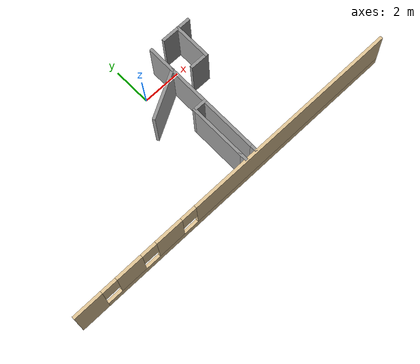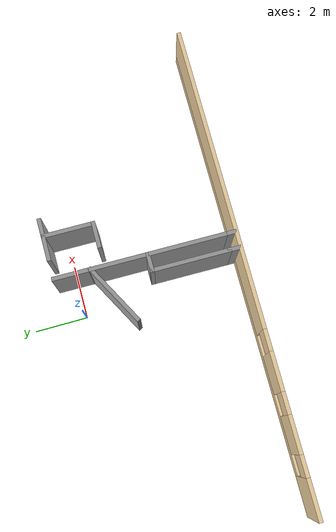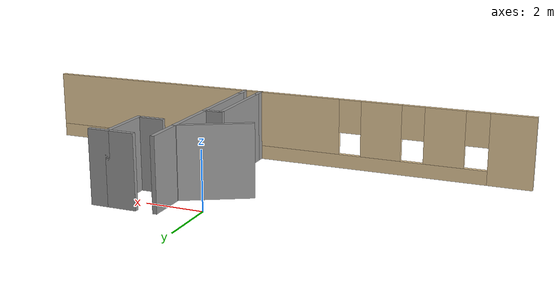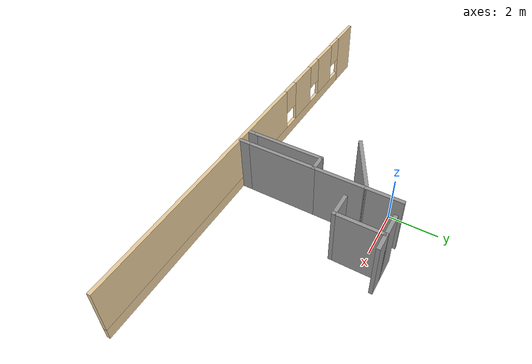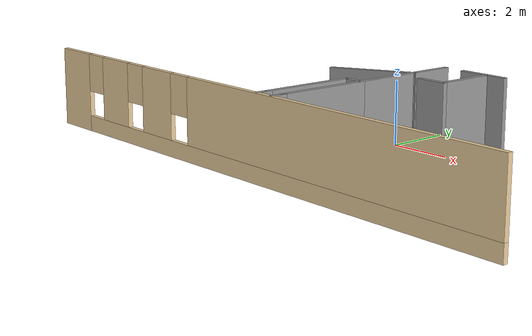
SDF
<sdf version="1.6">
 <model name="melgar_house">
  <link name="Wall_105">
   <pose>0.674077 -4.18057 0 0 0 -1.5708</pose>
   <visual name="Wall_105_Visual">
    <pose>0 0 1.25 0 -0 0</pose>
    <geometry><box><size>3 0.15 2.5</size></box></geometry>
    <material>
     <script><uri>file://media/materials/scripts/gazebo.material</uri><name>Gazebo/Grey</name></script>
     <ambient>1 1 1 1</ambient>
     <shader type="pixel"/>
     <diffuse>0.7 0.7 0.7 1</diffuse>
     <specular>0.01 0.01 0.01 1</specular>
     <emissive>0 0 0 1</emissive>
    </material>
    <meta><layer>0</layer></meta>
   </visual>
   <collision name="Wall_105_Collision">
    <pose>0 0 1.25 0 -0 0</pose>
    <geometry><box><size>3 0.15 2.5</size></box></geometry>
    <surface>
     <friction>
      <ode><mu>1</mu><mu2>1</mu2><fdir1>0 0 0</fdir1><slip1>0</slip1><slip2>0</slip2></ode>
      <torsional>
       <coefficient>1</coefficient>
       <patch_radius>0</patch_radius>
       <surface_radius>0</surface_radius>
       <use_patch_radius>1</use_patch_radius>
       <ode><slip>0</slip></ode>
      </torsional>
     </friction>
     <bounce><restitution_coefficient>0</restitution_coefficient><threshold>1e+06</threshold></bounce>
     <contact>
      <collide_without_contact>0</collide_without_contact>
      <collide_without_contact_bitmask>1</collide_without_contact_bitmask>
      <collide_bitmask>1</collide_bitmask>
      <ode>
       <soft_cfm>0</soft_cfm>
       <soft_erp>0.2</soft_erp>
       <kp>1e+13</kp>
       <kd>1</kd>
       <max_vel>0.01</max_vel>
       <min_depth>0</min_depth>
      </ode>
      <bullet>
       <split_impulse>1</split_impulse>
       <split_impulse_penetration_threshold>-0.01</split_impulse_penetration_threshold>
       <soft_cfm>0</soft_cfm>
       <soft_erp>0.2</soft_erp>
       <kp>1e+13</kp>
       <kd>1</kd>
      </bullet>
     </contact>
    </surface>
   </collision>
  </link>
  <link name="Wall_106">
   <pose>0.674077 -5.78057 0 0 0 -1.5708</pose>
   <visual name="Wall_106_Visual">
    <pose>0 0 1.25 0 -0 0</pose>
    <geometry><box><size>0.5 0.15 2.5</size></box></geometry>
    <material>
     <script><uri>file://media/materials/scripts/gazebo.material</uri><name>Gazebo/Grey</name></script>
     <ambient>1 1 1 1</ambient>
     <shader type="pixel"/>
     <diffuse>0.7 0.7 0.7 1</diffuse>
     <specular>0.01 0.01 0.01 1</specular>
     <emissive>0 0 0 1</emissive>
    </material>
    <meta><layer>0</layer></meta>
   </visual>
   <collision name="Wall_106_Collision">
    <pose>0 0 1.25 0 -0 0</pose>
    <geometry><box><size>0.5 0.15 2.5</size></box></geometry>
    <surface>
     <friction>
      <ode><mu>1</mu><mu2>1</mu2><fdir1>0 0 0</fdir1><slip1>0</slip1><slip2>0</slip2></ode>
      <torsional>
       <coefficient>1</coefficient>
       <patch_radius>0</patch_radius>
       <surface_radius>0</surface_radius>
       <use_patch_radius>1</use_patch_radius>
       <ode><slip>0</slip></ode>
      </torsional>
     </friction>
     <bounce><restitution_coefficient>0</restitution_coefficient><threshold>1e+06</threshold></bounce>
     <contact>
      <collide_without_contact>0</collide_without_contact>
      <collide_without_contact_bitmask>1</collide_without_contact_bitmask>
      <collide_bitmask>1</collide_bitmask>
      <ode>
       <soft_cfm>0</soft_cfm>
       <soft_erp>0.2</soft_erp>
       <kp>1e+13</kp>
       <kd>1</kd>
       <max_vel>0.01</max_vel>
       <min_depth>0</min_depth>
      </ode>
      <bullet>
       <split_impulse>1</split_impulse>
       <split_impulse_penetration_threshold>-0.01</split_impulse_penetration_threshold>
       <soft_cfm>0</soft_cfm>
       <soft_erp>0.2</soft_erp>
       <kp>1e+13</kp>
       <kd>1</kd>
      </bullet>
     </contact>
    </surface>
   </collision>
  </link>
  <link name="Wall_108">
   <pose>0.974077 -2.75557 0 0 -0 0</pose>
   <visual name="Wall_108_Visual">
    <pose>0 0 1.25 0 -0 0</pose>
    <geometry><box><size>0.75 0.15 2.5</size></box></geometry>
    <material>
     <script><uri>file://media/materials/scripts/gazebo.material</uri><name>Gazebo/Grey</name></script>
     <ambient>1 1 1 1</ambient>
     <shader type="pixel"/>
     <diffuse>0.7 0.7 0.7 1</diffuse>
     <specular>0.01 0.01 0.01 1</specular>
     <emissive>0 0 0 1</emissive>
    </material>
    <meta><layer>0</layer></meta>
   </visual>
   <collision name="Wall_108_Collision">
    <pose>0 0 1.25 0 -0 0</pose>
    <geometry><box><size>0.75 0.15 2.5</size></box></geometry>
    <surface>
     <friction>
      <ode><mu>1</mu><mu2>1</mu2><fdir1>0 0 0</fdir1><slip1>0</slip1><slip2>0</slip2></ode>
      <torsional>
       <coefficient>1</coefficient>
       <patch_radius>0</patch_radius>
       <surface_radius>0</surface_radius>
       <use_patch_radius>1</use_patch_radius>
       <ode><slip>0</slip></ode>
      </torsional>
     </friction>
     <bounce><restitution_coefficient>0</restitution_coefficient><threshold>1e+06</threshold></bounce>
     <contact>
      <collide_without_contact>0</collide_without_contact>
      <collide_without_contact_bitmask>1</collide_without_contact_bitmask>
      <collide_bitmask>1</collide_bitmask>
      <ode>
       <soft_cfm>0</soft_cfm>
       <soft_erp>0.2</soft_erp>
       <kp>1e+13</kp>
       <kd>1</kd>
       <max_vel>0.01</max_vel>
       <min_depth>0</min_depth>
      </ode>
      <bullet>
       <split_impulse>1</split_impulse>
       <split_impulse_penetration_threshold>-0.01</split_impulse_penetration_threshold>
       <soft_cfm>0</soft_cfm>
       <soft_erp>0.2</soft_erp>
       <kp>1e+13</kp>
       <kd>1</kd>
      </bullet>
     </contact>
    </surface>
   </collision>
  </link>
  <link name="Wall_110">
   <pose>1.27408 -4.18057 0 0 0 -1.5708</pose>
   <visual name="Wall_110_Visual">
    <pose>0 0 1.25 0 -0 0</pose>
    <geometry><box><size>3 0.15 2.5</size></box></geometry>
    <material>
     <script><uri>file://media/materials/scripts/gazebo.material</uri><name>Gazebo/Grey</name></script>
     <ambient>1 1 1 1</ambient>
     <shader type="pixel"/>
     <diffuse>0.7 0.7 0.7 1</diffuse>
     <specular>0.01 0.01 0.01 1</specular>
     <emissive>0 0 0 1</emissive>
    </material>
    <meta><layer>0</layer></meta>
   </visual>
   <collision name="Wall_110_Collision">
    <pose>0 0 1.25 0 -0 0</pose>
    <geometry><box><size>3 0.15 2.5</size></box></geometry>
    <surface>
     <friction>
      <ode><mu>1</mu><mu2>1</mu2><fdir1>0 0 0</fdir1><slip1>0</slip1><slip2>0</slip2></ode>
      <torsional>
       <coefficient>1</coefficient>
       <patch_radius>0</patch_radius>
       <surface_radius>0</surface_radius>
       <use_patch_radius>1</use_patch_radius>
       <ode><slip>0</slip></ode>
      </torsional>
     </friction>
     <bounce><restitution_coefficient>0</restitution_coefficient><threshold>1e+06</threshold></bounce>
     <contact>
      <collide_without_contact>0</collide_without_contact>
      <collide_without_contact_bitmask>1</collide_without_contact_bitmask>
      <collide_bitmask>1</collide_bitmask>
      <ode>
       <soft_cfm>0</soft_cfm>
       <soft_erp>0.2</soft_erp>
       <kp>1e+13</kp>
       <kd>1</kd>
       <max_vel>0.01</max_vel>
       <min_depth>0</min_depth>
      </ode>
      <bullet>
       <split_impulse>1</split_impulse>
       <split_impulse_penetration_threshold>-0.01</split_impulse_penetration_threshold>
       <soft_cfm>0</soft_cfm>
       <soft_erp>0.2</soft_erp>
       <kp>1e+13</kp>
       <kd>1</kd>
      </bullet>
     </contact>
    </surface>
   </collision>
  </link>
  <link name="Wall_111">
   <pose>1.27408 -5.78057 0 0 0 -1.5708</pose>
   <visual name="Wall_111_Visual">
    <pose>0 0 1.25 0 -0 0</pose>
    <geometry><box><size>0.5 0.15 2.5</size></box></geometry>
    <material>
     <script><uri>file://media/materials/scripts/gazebo.material</uri><name>Gazebo/Grey</name></script>
     <ambient>1 1 1 1</ambient>
     <shader type="pixel"/>
     <diffuse>0.7 0.7 0.7 1</diffuse>
     <specular>0.01 0.01 0.01 1</specular>
     <emissive>0 0 0 1</emissive>
    </material>
    <meta><layer>0</layer></meta>
   </visual>
   <collision name="Wall_111_Collision">
    <pose>0 0 1.25 0 -0 0</pose>
    <geometry><box><size>0.5 0.15 2.5</size></box></geometry>
    <surface>
     <friction>
      <ode><mu>1</mu><mu2>1</mu2><fdir1>0 0 0</fdir1><slip1>0</slip1><slip2>0</slip2></ode>
      <torsional>
       <coefficient>1</coefficient>
       <patch_radius>0</patch_radius>
       <surface_radius>0</surface_radius>
       <use_patch_radius>1</use_patch_radius>
       <ode><slip>0</slip></ode>
      </torsional>
     </friction>
     <bounce><restitution_coefficient>0</restitution_coefficient><threshold>1e+06</threshold></bounce>
     <contact>
      <collide_without_contact>0</collide_without_contact>
      <collide_without_contact_bitmask>1</collide_without_contact_bitmask>
      <collide_bitmask>1</collide_bitmask>
      <ode>
       <soft_cfm>0</soft_cfm>
       <soft_erp>0.2</soft_erp>
       <kp>1e+13</kp>
       <kd>1</kd>
       <max_vel>0.01</max_vel>
       <min_depth>0</min_depth>
      </ode>
      <bullet>
       <split_impulse>1</split_impulse>
       <split_impulse_penetration_threshold>-0.01</split_impulse_penetration_threshold>
       <soft_cfm>0</soft_cfm>
       <soft_erp>0.2</soft_erp>
       <kp>1e+13</kp>
       <kd>1</kd>
      </bullet>
     </contact>
    </surface>
   </collision>
  </link>
  <link name="Wall_115">
   <pose>1.27408 -1.70557 0 0 -0 1.5708</pose>
   <visual name="Wall_115_Visual">
    <pose>0 0 1.25 0 -0 0</pose>
    <geometry><box><size>2.25 0.15 2.5</size></box></geometry>
    <material>
     <script><uri>file://media/materials/scripts/gazebo.material</uri><name>Gazebo/Grey</name></script>
     <ambient>1 1 1 1</ambient>
     <shader type="pixel"/>
     <diffuse>0.7 0.7 0.7 1</diffuse>
     <specular>0.01 0.01 0.01 1</specular>
     <emissive>0 0 0 1</emissive>
    </material>
    <meta><layer>0</layer></meta>
   </visual>
   <collision name="Wall_115_Collision">
    <pose>0 0 1.25 0 -0 0</pose>
    <geometry><box><size>2.25 0.15 2.5</size></box></geometry>
    <surface>
     <friction>
      <ode><mu>1</mu><mu2>1</mu2><fdir1>0 0 0</fdir1><slip1>0</slip1><slip2>0</slip2></ode>
      <torsional>
       <coefficient>1</coefficient>
       <patch_radius>0</patch_radius>
       <surface_radius>0</surface_radius>
       <use_patch_radius>1</use_patch_radius>
       <ode><slip>0</slip></ode>
      </torsional>
     </friction>
     <bounce><restitution_coefficient>0</restitution_coefficient><threshold>1e+06</threshold></bounce>
     <contact>
      <collide_without_contact>0</collide_without_contact>
      <collide_without_contact_bitmask>1</collide_without_contact_bitmask>
      <collide_bitmask>1</collide_bitmask>
      <ode>
       <soft_cfm>0</soft_cfm>
       <soft_erp>0.2</soft_erp>
       <kp>1e+13</kp>
       <kd>1</kd>
       <max_vel>0.01</max_vel>
       <min_depth>0</min_depth>
      </ode>
      <bullet>
       <split_impulse>1</split_impulse>
       <split_impulse_penetration_threshold>-0.01</split_impulse_penetration_threshold>
       <soft_cfm>0</soft_cfm>
       <soft_erp>0.2</soft_erp>
       <kp>1e+13</kp>
       <kd>1</kd>
      </bullet>
     </contact>
    </surface>
   </collision>
  </link>
  <link name="Wall_116">
   <pose>1.27408 0.019431 0 0 -0 1.5708</pose>
   <visual name="Wall_116_Visual">
    <pose>0 0 1.25 0 -0 0</pose>
    <geometry><box><size>1.5 0.15 2.5</size></box></geometry>
    <material>
     <script><uri>file://media/materials/scripts/gazebo.material</uri><name>Gazebo/Grey</name></script>
     <ambient>1 1 1 1</ambient>
     <shader type="pixel"/>
     <diffuse>0.7 0.7 0.7 1</diffuse>
     <specular>0.01 0.01 0.01 1</specular>
     <emissive>0 0 0 1</emissive>
    </material>
    <meta><layer>0</layer></meta>
   </visual>
   <collision name="Wall_116_Collision">
    <pose>0 0 1.25 0 -0 0</pose>
    <geometry><box><size>1.5 0.15 2.5</size></box></geometry>
    <surface>
     <friction>
      <ode><mu>1</mu><mu2>1</mu2><fdir1>0 0 0</fdir1><slip1>0</slip1><slip2>0</slip2></ode>
      <torsional>
       <coefficient>1</coefficient>
       <patch_radius>0</patch_radius>
       <surface_radius>0</surface_radius>
       <use_patch_radius>1</use_patch_radius>
       <ode><slip>0</slip></ode>
      </torsional>
     </friction>
     <bounce><restitution_coefficient>0</restitution_coefficient><threshold>1e+06</threshold></bounce>
     <contact>
      <collide_without_contact>0</collide_without_contact>
      <collide_without_contact_bitmask>1</collide_without_contact_bitmask>
      <collide_bitmask>1</collide_bitmask>
      <ode>
       <soft_cfm>0</soft_cfm>
       <soft_erp>0.2</soft_erp>
       <kp>1e+13</kp>
       <kd>1</kd>
       <max_vel>0.01</max_vel>
       <min_depth>0</min_depth>
      </ode>
      <bullet>
       <split_impulse>1</split_impulse>
       <split_impulse_penetration_threshold>-0.01</split_impulse_penetration_threshold>
       <soft_cfm>0</soft_cfm>
       <soft_erp>0.2</soft_erp>
       <kp>1e+13</kp>
       <kd>1</kd>
      </bullet>
     </contact>
    </surface>
   </collision>
  </link>
  <link name="Wall_118">
   <pose>0.197768 -1.23836 0 0 -0 0.496271</pose>
   <visual name="Wall_118_Visual">
    <pose>0 0 1.25 0 -0 0</pose>
    <geometry><box><size>2.59793 0.15 2.5</size></box></geometry>
    <material>
     <script><uri>file://media/materials/scripts/gazebo.material</uri><name>Gazebo/Grey</name></script>
     <ambient>1 1 1 1</ambient>
     <shader type="pixel"/>
     <diffuse>0.7 0.7 0.7 1</diffuse>
     <specular>0.01 0.01 0.01 1</specular>
     <emissive>0 0 0 1</emissive>
    </material>
    <meta><layer>0</layer></meta>
   </visual>
   <collision name="Wall_118_Collision">
    <pose>0 0 1.25 0 -0 0</pose>
    <geometry><box><size>2.59793 0.15 2.5</size></box></geometry>
    <surface>
     <friction>
      <ode><mu>1</mu><mu2>1</mu2><fdir1>0 0 0</fdir1><slip1>0</slip1><slip2>0</slip2></ode>
      <torsional>
       <coefficient>1</coefficient>
       <patch_radius>0</patch_radius>
       <surface_radius>0</surface_radius>
       <use_patch_radius>1</use_patch_radius>
       <ode><slip>0</slip></ode>
      </torsional>
     </friction>
     <bounce><restitution_coefficient>0</restitution_coefficient><threshold>1e+06</threshold></bounce>
     <contact>
      <collide_without_contact>0</collide_without_contact>
      <collide_without_contact_bitmask>1</collide_without_contact_bitmask>
      <collide_bitmask>1</collide_bitmask>
      <ode>
       <soft_cfm>0</soft_cfm>
       <soft_erp>0.2</soft_erp>
       <kp>1e+13</kp>
       <kd>1</kd>
       <max_vel>0.01</max_vel>
       <min_depth>0</min_depth>
      </ode>
      <bullet>
       <split_impulse>1</split_impulse>
       <split_impulse_penetration_threshold>-0.01</split_impulse_penetration_threshold>
       <soft_cfm>0</soft_cfm>
       <soft_erp>0.2</soft_erp>
       <kp>1e+13</kp>
       <kd>1</kd>
      </bullet>
     </contact>
    </surface>
   </collision>
  </link>
  <link name="Wall_122">
   <pose>2.44908 0.694431 0 0 -0 0</pose>
   <visual name="Wall_122_Visual">
    <pose>0 0 1.25 0 -0 0</pose>
    <geometry><box><size>1 0.15 2.5</size></box></geometry>
    <material>
     <script><uri>file://media/materials/scripts/gazebo.material</uri><name>Gazebo/Grey</name></script>
     <ambient>1 1 1 1</ambient>
     <shader type="pixel"/>
     <diffuse>0.7 0.7 0.7 1</diffuse>
     <specular>0.01 0.01 0.01 1</specular>
     <emissive>0 0 0 1</emissive>
    </material>
    <meta><layer>0</layer></meta>
   </visual>
   <collision name="Wall_122_Collision">
    <pose>0 0 1.25 0 -0 0</pose>
    <geometry><box><size>1 0.15 2.5</size></box></geometry>
    <surface>
     <friction>
      <ode><mu>1</mu><mu2>1</mu2><fdir1>0 0 0</fdir1><slip1>0</slip1><slip2>0</slip2></ode>
      <torsional>
       <coefficient>1</coefficient>
       <patch_radius>0</patch_radius>
       <surface_radius>0</surface_radius>
       <use_patch_radius>1</use_patch_radius>
       <ode><slip>0</slip></ode>
      </torsional>
     </friction>
     <bounce><restitution_coefficient>0</restitution_coefficient><threshold>1e+06</threshold></bounce>
     <contact>
      <collide_without_contact>0</collide_without_contact>
      <collide_without_contact_bitmask>1</collide_without_contact_bitmask>
      <collide_bitmask>1</collide_bitmask>
      <ode>
       <soft_cfm>0</soft_cfm>
       <soft_erp>0.2</soft_erp>
       <kp>1e+13</kp>
       <kd>1</kd>
       <max_vel>0.01</max_vel>
       <min_depth>0</min_depth>
      </ode>
      <bullet>
       <split_impulse>1</split_impulse>
       <split_impulse_penetration_threshold>-0.01</split_impulse_penetration_threshold>
       <soft_cfm>0</soft_cfm>
       <soft_erp>0.2</soft_erp>
       <kp>1e+13</kp>
       <kd>1</kd>
      </bullet>
     </contact>
    </surface>
   </collision>
  </link>
  <link name="Wall_123">
   <pose>3.17408 0.694431 0 0 -0 0</pose>
   <visual name="Wall_123_Visual">
    <pose>0 0 1.25 0 -0 0</pose>
    <geometry><box><size>0.75 0.15 2.5</size></box></geometry>
    <material>
     <script><uri>file://media/materials/scripts/gazebo.material</uri><name>Gazebo/Grey</name></script>
     <ambient>1 1 1 1</ambient>
     <shader type="pixel"/>
     <diffuse>0.7 0.7 0.7 1</diffuse>
     <specular>0.01 0.01 0.01 1</specular>
     <emissive>0 0 0 1</emissive>
    </material>
    <meta><layer>0</layer></meta>
   </visual>
   <collision name="Wall_123_Collision">
    <pose>0 0 1.25 0 -0 0</pose>
    <geometry><box><size>0.75 0.15 2.5</size></box></geometry>
    <surface>
     <friction>
      <ode><mu>1</mu><mu2>1</mu2><fdir1>0 0 0</fdir1><slip1>0</slip1><slip2>0</slip2></ode>
      <torsional>
       <coefficient>1</coefficient>
       <patch_radius>0</patch_radius>
       <surface_radius>0</surface_radius>
       <use_patch_radius>1</use_patch_radius>
       <ode><slip>0</slip></ode>
      </torsional>
     </friction>
     <bounce><restitution_coefficient>0</restitution_coefficient><threshold>1e+06</threshold></bounce>
     <contact>
      <collide_without_contact>0</collide_without_contact>
      <collide_without_contact_bitmask>1</collide_without_contact_bitmask>
      <collide_bitmask>1</collide_bitmask>
      <ode>
       <soft_cfm>0</soft_cfm>
       <soft_erp>0.2</soft_erp>
       <kp>1e+13</kp>
       <kd>1</kd>
       <max_vel>0.01</max_vel>
       <min_depth>0</min_depth>
      </ode>
      <bullet>
       <split_impulse>1</split_impulse>
       <split_impulse_penetration_threshold>-0.01</split_impulse_penetration_threshold>
       <soft_cfm>0</soft_cfm>
       <soft_erp>0.2</soft_erp>
       <kp>1e+13</kp>
       <kd>1</kd>
      </bullet>
     </contact>
    </surface>
   </collision>
  </link>
  <link name="Wall_125">
   <pose>2.87408 -0.230569 0 0 0 -1.5708</pose>
   <visual name="Wall_125_Visual">
    <pose>0 0 1.25 0 -0 0</pose>
    <geometry><box><size>2 0.15 2.5</size></box></geometry>
    <material>
     <script><uri>file://media/materials/scripts/gazebo.material</uri><name>Gazebo/Grey</name></script>
     <ambient>1 1 1 1</ambient>
     <shader type="pixel"/>
     <diffuse>0.7 0.7 0.7 1</diffuse>
     <specular>0.01 0.01 0.01 1</specular>
     <emissive>0 0 0 1</emissive>
    </material>
    <meta><layer>0</layer></meta>
   </visual>
   <collision name="Wall_125_Collision">
    <pose>0 0 1.25 0 -0 0</pose>
    <geometry><box><size>2 0.15 2.5</size></box></geometry>
    <surface>
     <friction>
      <ode><mu>1</mu><mu2>1</mu2><fdir1>0 0 0</fdir1><slip1>0</slip1><slip2>0</slip2></ode>
      <torsional>
       <coefficient>1</coefficient>
       <patch_radius>0</patch_radius>
       <surface_radius>0</surface_radius>
       <use_patch_radius>1</use_patch_radius>
       <ode><slip>0</slip></ode>
      </torsional>
     </friction>
     <bounce><restitution_coefficient>0</restitution_coefficient><threshold>1e+06</threshold></bounce>
     <contact>
      <collide_without_contact>0</collide_without_contact>
      <collide_without_contact_bitmask>1</collide_without_contact_bitmask>
      <collide_bitmask>1</collide_bitmask>
      <ode>
       <soft_cfm>0</soft_cfm>
       <soft_erp>0.2</soft_erp>
       <kp>1e+13</kp>
       <kd>1</kd>
       <max_vel>0.01</max_vel>
       <min_depth>0</min_depth>
      </ode>
      <bullet>
       <split_impulse>1</split_impulse>
       <split_impulse_penetration_threshold>-0.01</split_impulse_penetration_threshold>
       <soft_cfm>0</soft_cfm>
       <soft_erp>0.2</soft_erp>
       <kp>1e+13</kp>
       <kd>1</kd>
      </bullet>
     </contact>
    </surface>
   </collision>
  </link>
  <link name="Wall_140">
   <pose>2.44908 -1.15557 0 0 -0 3.14159</pose>
   <visual name="Wall_140_Visual">
    <pose>0 0 1.25 0 -0 0</pose>
    <geometry><box><size>1 0.15 2.5</size></box></geometry>
    <material>
     <script><uri>file://media/materials/scripts/gazebo.material</uri><name>Gazebo/Grey</name></script>
     <ambient>1 1 1 1</ambient>
     <shader type="pixel"/>
     <diffuse>0.7 0.7 0.7 1</diffuse>
     <specular>0.01 0.01 0.01 1</specular>
     <emissive>0 0 0 1</emissive>
    </material>
    <meta><layer>0</layer></meta>
   </visual>
   <collision name="Wall_140_Collision">
    <pose>0 0 1.25 0 -0 0</pose>
    <geometry><box><size>1 0.15 2.5</size></box></geometry>
    <surface>
     <friction>
      <ode><mu>1</mu><mu2>1</mu2><fdir1>0 0 0</fdir1><slip1>0</slip1><slip2>0</slip2></ode>
      <torsional>
       <coefficient>1</coefficient>
       <patch_radius>0</patch_radius>
       <surface_radius>0</surface_radius>
       <use_patch_radius>1</use_patch_radius>
       <ode><slip>0</slip></ode>
      </torsional>
     </friction>
     <bounce><restitution_coefficient>0</restitution_coefficient><threshold>1e+06</threshold></bounce>
     <contact>
      <collide_without_contact>0</collide_without_contact>
      <collide_without_contact_bitmask>1</collide_without_contact_bitmask>
      <collide_bitmask>1</collide_bitmask>
      <ode>
       <soft_cfm>0</soft_cfm>
       <soft_erp>0.2</soft_erp>
       <kp>1e+13</kp>
       <kd>1</kd>
       <max_vel>0.01</max_vel>
       <min_depth>0</min_depth>
      </ode>
      <bullet>
       <split_impulse>1</split_impulse>
       <split_impulse_penetration_threshold>-0.01</split_impulse_penetration_threshold>
       <soft_cfm>0</soft_cfm>
       <soft_erp>0.2</soft_erp>
       <kp>1e+13</kp>
       <kd>1</kd>
      </bullet>
     </contact>
    </surface>
   </collision>
  </link>
  <link name="Wall_50">
   <pose>0.00354 -6.025 0 0 -0 0</pose>
   <visual name="Wall_50_Visual_0">
    <pose>-8.38865 0 1.25 0 -0 0</pose>
    <geometry><box><size>1.5227 0.15 2.5</size></box></geometry>
    <material>
     <script><uri>file://media/materials/scripts/gazebo.material</uri><name>Gazebo/Grey</name></script>
     <ambient>0.921569 0.807843 0.615686 1</ambient>
     <shader type="pixel"/>
     <diffuse>0.7 0.7 0.7 1</diffuse>
     <specular>0.01 0.01 0.01 1</specular>
     <emissive>0 0 0 1</emissive>
    </material>
    <meta><layer>0</layer></meta>
   </visual>
   <visual name="Wall_50_Visual_1">
    <pose>0.761351 0 0.25 0 -0 0</pose>
    <geometry><box><size>16.7773 0.15 0.5</size></box></geometry>
    <material>
     <script><uri>file://media/materials/scripts/gazebo.material</uri><name>Gazebo/Grey</name></script>
     <ambient>0.921569 0.807843 0.615686 1</ambient>
     <shader type="pixel"/>
     <diffuse>0.7 0.7 0.7 1</diffuse>
     <specular>0.01 0.01 0.01 1</specular>
     <emissive>0 0 0 1</emissive>
    </material>
    <meta><layer>0</layer></meta>
   </visual>
   <visual name="Wall_50_Visual_2">
    <pose>-6.12636 0 1.5 0 -0 0</pose>
    <geometry><box><size>1.40187 0.15 2</size></box></geometry>
    <material>
     <script><uri>file://media/materials/scripts/gazebo.material</uri><name>Gazebo/Grey</name></script>
     <ambient>0.921569 0.807843 0.615686 1</ambient>
     <shader type="pixel"/>
     <diffuse>0.7 0.7 0.7 1</diffuse>
     <specular>0.01 0.01 0.01 1</specular>
     <emissive>0 0 0 1</emissive>
    </material>
    <meta><layer>0</layer></meta>
   </visual>
   <visual name="Wall_50_Visual_3">
    <pose>-3.8972 0 1.5 0 -0 0</pose>
    <geometry><box><size>1.45646 0.15 2</size></box></geometry>
    <material>
     <script><uri>file://media/materials/scripts/gazebo.material</uri><name>Gazebo/Grey</name></script>
     <ambient>0.921569 0.807843 0.615686 1</ambient>
     <shader type="pixel"/>
     <diffuse>0.7 0.7 0.7 1</diffuse>
     <specular>0.01 0.01 0.01 1</specular>
     <emissive>0 0 0 1</emissive>
    </material>
    <meta><layer>0</layer></meta>
   </visual>
   <visual name="Wall_50_Visual_4">
    <pose>3.39052 0 1.5 0 -0 0</pose>
    <geometry><box><size>11.519 0.15 2</size></box></geometry>
    <material>
     <script><uri>file://media/materials/scripts/gazebo.material</uri><name>Gazebo/Grey</name></script>
     <ambient>0.921569 0.807843 0.615686 1</ambient>
     <shader type="pixel"/>
     <diffuse>0.7 0.7 0.7 1</diffuse>
     <specular>0.01 0.01 0.01 1</specular>
     <emissive>0 0 0 1</emissive>
    </material>
    <meta><layer>0</layer></meta>
   </visual>
   <visual name="Wall_50_Visual_5">
    <pose>-7.2273 0 1.9 0 -0 0</pose>
    <geometry><box><size>0.8 0.15 1.2</size></box></geometry>
    <material>
     <script><uri>file://media/materials/scripts/gazebo.material</uri><name>Gazebo/Grey</name></script>
     <ambient>0.921569 0.807843 0.615686 1</ambient>
     <shader type="pixel"/>
     <diffuse>0.7 0.7 0.7 1</diffuse>
     <specular>0.01 0.01 0.01 1</specular>
     <emissive>0 0 0 1</emissive>
    </material>
    <meta><layer>0</layer></meta>
   </visual>
   <visual name="Wall_50_Visual_6">
    <pose>-5.02543 0 1.9 0 -0 0</pose>
    <geometry><box><size>0.8 0.15 1.2</size></box></geometry>
    <material>
     <script><uri>file://media/materials/scripts/gazebo.material</uri><name>Gazebo/Grey</name></script>
     <ambient>0.921569 0.807843 0.615686 1</ambient>
     <shader type="pixel"/>
     <diffuse>0.7 0.7 0.7 1</diffuse>
     <specular>0.01 0.01 0.01 1</specular>
     <emissive>0 0 0 1</emissive>
    </material>
    <meta><layer>0</layer></meta>
   </visual>
   <visual name="Wall_50_Visual_7">
    <pose>-2.76897 0 1.9 0 -0 0</pose>
    <geometry><box><size>0.8 0.15 1.2</size></box></geometry>
    <material>
     <script><uri>file://media/materials/scripts/gazebo.material</uri><name>Gazebo/Grey</name></script>
     <ambient>0.921569 0.807843 0.615686 1</ambient>
     <shader type="pixel"/>
     <diffuse>0.7 0.7 0.7 1</diffuse>
     <specular>0.01 0.01 0.01 1</specular>
     <emissive>0 0 0 1</emissive>
    </material>
    <meta><layer>0</layer></meta>
   </visual>
   <collision name="Wall_50_Collision_7">
    <pose>-2.76897 0 1.9 0 -0 0</pose>
    <geometry><box><size>0.8 0.15 1.2</size></box></geometry>
    <surface>
     <friction>
      <ode><mu>1</mu><mu2>1</mu2><fdir1>0 0 0</fdir1><slip1>0</slip1><slip2>0</slip2></ode>
      <torsional>
       <coefficient>1</coefficient>
       <patch_radius>0</patch_radius>
       <surface_radius>0</surface_radius>
       <use_patch_radius>1</use_patch_radius>
       <ode><slip>0</slip></ode>
      </torsional>
     </friction>
     <bounce><restitution_coefficient>0</restitution_coefficient><threshold>1e+06</threshold></bounce>
     <contact>
      <collide_without_contact>0</collide_without_contact>
      <collide_without_contact_bitmask>1</collide_without_contact_bitmask>
      <collide_bitmask>1</collide_bitmask>
      <ode>
       <soft_cfm>0</soft_cfm>
       <soft_erp>0.2</soft_erp>
       <kp>1e+13</kp>
       <kd>1</kd>
       <max_vel>0.01</max_vel>
       <min_depth>0</min_depth>
      </ode>
      <bullet>
       <split_impulse>1</split_impulse>
       <split_impulse_penetration_threshold>-0.01</split_impulse_penetration_threshold>
       <soft_cfm>0</soft_cfm>
       <soft_erp>0.2</soft_erp>
       <kp>1e+13</kp>
       <kd>1</kd>
      </bullet>
     </contact>
    </surface>
   </collision>
   <collision name="Wall_50_Collision_0">
    <pose>-8.38865 0 1.25 0 -0 0</pose>
    <geometry><box><size>1.5227 0.15 2.5</size></box></geometry>
    <surface>
     <friction>
      <ode><mu>1</mu><mu2>1</mu2><fdir1>0 0 0</fdir1><slip1>0</slip1><slip2>0</slip2></ode>
      <torsional>
       <coefficient>1</coefficient>
       <patch_radius>0</patch_radius>
       <surface_radius>0</surface_radius>
       <use_patch_radius>1</use_patch_radius>
       <ode><slip>0</slip></ode>
      </torsional>
     </friction>
     <bounce><restitution_coefficient>0</restitution_coefficient><threshold>1e+06</threshold></bounce>
     <contact>
      <collide_without_contact>0</collide_without_contact>
      <collide_without_contact_bitmask>1</collide_without_contact_bitmask>
      <collide_bitmask>1</collide_bitmask>
      <ode>
       <soft_cfm>0</soft_cfm>
       <soft_erp>0.2</soft_erp>
       <kp>1e+13</kp>
       <kd>1</kd>
       <max_vel>0.01</max_vel>
       <min_depth>0</min_depth>
      </ode>
      <bullet>
       <split_impulse>1</split_impulse>
       <split_impulse_penetration_threshold>-0.01</split_impulse_penetration_threshold>
       <soft_cfm>0</soft_cfm>
       <soft_erp>0.2</soft_erp>
       <kp>1e+13</kp>
       <kd>1</kd>
      </bullet>
     </contact>
    </surface>
   </collision>
   <collision name="Wall_50_Collision_1">
    <pose>0.761351 0 0.25 0 -0 0</pose>
    <geometry><box><size>16.7773 0.15 0.5</size></box></geometry>
    <surface>
     <friction>
      <ode><mu>1</mu><mu2>1</mu2><fdir1>0 0 0</fdir1><slip1>0</slip1><slip2>0</slip2></ode>
      <torsional>
       <coefficient>1</coefficient>
       <patch_radius>0</patch_radius>
       <surface_radius>0</surface_radius>
       <use_patch_radius>1</use_patch_radius>
       <ode><slip>0</slip></ode>
      </torsional>
     </friction>
     <bounce><restitution_coefficient>0</restitution_coefficient><threshold>1e+06</threshold></bounce>
     <contact>
      <collide_without_contact>0</collide_without_contact>
      <collide_without_contact_bitmask>1</collide_without_contact_bitmask>
      <collide_bitmask>1</collide_bitmask>
      <ode>
       <soft_cfm>0</soft_cfm>
       <soft_erp>0.2</soft_erp>
       <kp>1e+13</kp>
       <kd>1</kd>
       <max_vel>0.01</max_vel>
       <min_depth>0</min_depth>
      </ode>
      <bullet>
       <split_impulse>1</split_impulse>
       <split_impulse_penetration_threshold>-0.01</split_impulse_penetration_threshold>
       <soft_cfm>0</soft_cfm>
       <soft_erp>0.2</soft_erp>
       <kp>1e+13</kp>
       <kd>1</kd>
      </bullet>
     </contact>
    </surface>
   </collision>
   <collision name="Wall_50_Collision_2">
    <pose>-6.12636 0 1.5 0 -0 0</pose>
    <geometry><box><size>1.40187 0.15 2</size></box></geometry>
    <surface>
     <friction>
      <ode><mu>1</mu><mu2>1</mu2><fdir1>0 0 0</fdir1><slip1>0</slip1><slip2>0</slip2></ode>
      <torsional>
       <coefficient>1</coefficient>
       <patch_radius>0</patch_radius>
       <surface_radius>0</surface_radius>
       <use_patch_radius>1</use_patch_radius>
       <ode><slip>0</slip></ode>
      </torsional>
     </friction>
     <bounce><restitution_coefficient>0</restitution_coefficient><threshold>1e+06</threshold></bounce>
     <contact>
      <collide_without_contact>0</collide_without_contact>
      <collide_without_contact_bitmask>1</collide_without_contact_bitmask>
      <collide_bitmask>1</collide_bitmask>
      <ode>
       <soft_cfm>0</soft_cfm>
       <soft_erp>0.2</soft_erp>
       <kp>1e+13</kp>
       <kd>1</kd>
       <max_vel>0.01</max_vel>
       <min_depth>0</min_depth>
      </ode>
      <bullet>
       <split_impulse>1</split_impulse>
       <split_impulse_penetration_threshold>-0.01</split_impulse_penetration_threshold>
       <soft_cfm>0</soft_cfm>
       <soft_erp>0.2</soft_erp>
       <kp>1e+13</kp>
       <kd>1</kd>
      </bullet>
     </contact>
    </surface>
   </collision>
   <collision name="Wall_50_Collision_3">
    <pose>-3.8972 0 1.5 0 -0 0</pose>
    <geometry><box><size>1.45646 0.15 2</size></box></geometry>
    <surface>
     <friction>
      <ode><mu>1</mu><mu2>1</mu2><fdir1>0 0 0</fdir1><slip1>0</slip1><slip2>0</slip2></ode>
      <torsional>
       <coefficient>1</coefficient>
       <patch_radius>0</patch_radius>
       <surface_radius>0</surface_radius>
       <use_patch_radius>1</use_patch_radius>
       <ode><slip>0</slip></ode>
      </torsional>
     </friction>
     <bounce><restitution_coefficient>0</restitution_coefficient><threshold>1e+06</threshold></bounce>
     <contact>
      <collide_without_contact>0</collide_without_contact>
      <collide_without_contact_bitmask>1</collide_without_contact_bitmask>
      <collide_bitmask>1</collide_bitmask>
      <ode>
       <soft_cfm>0</soft_cfm>
       <soft_erp>0.2</soft_erp>
       <kp>1e+13</kp>
       <kd>1</kd>
       <max_vel>0.01</max_vel>
       <min_depth>0</min_depth>
      </ode>
      <bullet>
       <split_impulse>1</split_impulse>
       <split_impulse_penetration_threshold>-0.01</split_impulse_penetration_threshold>
       <soft_cfm>0</soft_cfm>
       <soft_erp>0.2</soft_erp>
       <kp>1e+13</kp>
       <kd>1</kd>
      </bullet>
     </contact>
    </surface>
   </collision>
   <collision name="Wall_50_Collision_4">
    <pose>3.39052 0 1.5 0 -0 0</pose>
    <geometry><box><size>11.519 0.15 2</size></box></geometry>
    <surface>
     <friction>
      <ode><mu>1</mu><mu2>1</mu2><fdir1>0 0 0</fdir1><slip1>0</slip1><slip2>0</slip2></ode>
      <torsional>
       <coefficient>1</coefficient>
       <patch_radius>0</patch_radius>
       <surface_radius>0</surface_radius>
       <use_patch_radius>1</use_patch_radius>
       <ode><slip>0</slip></ode>
      </torsional>
     </friction>
     <bounce><restitution_coefficient>0</restitution_coefficient><threshold>1e+06</threshold></bounce>
     <contact>
      <collide_without_contact>0</collide_without_contact>
      <collide_without_contact_bitmask>1</collide_without_contact_bitmask>
      <collide_bitmask>1</collide_bitmask>
      <ode>
       <soft_cfm>0</soft_cfm>
       <soft_erp>0.2</soft_erp>
       <kp>1e+13</kp>
       <kd>1</kd>
       <max_vel>0.01</max_vel>
       <min_depth>0</min_depth>
      </ode>
      <bullet>
       <split_impulse>1</split_impulse>
       <split_impulse_penetration_threshold>-0.01</split_impulse_penetration_threshold>
       <soft_cfm>0</soft_cfm>
       <soft_erp>0.2</soft_erp>
       <kp>1e+13</kp>
       <kd>1</kd>
      </bullet>
     </contact>
    </surface>
   </collision>
   <collision name="Wall_50_Collision_5">
    <pose>-7.2273 0 1.9 0 -0 0</pose>
    <geometry><box><size>0.8 0.15 1.2</size></box></geometry>
    <surface>
     <friction>
      <ode><mu>1</mu><mu2>1</mu2><fdir1>0 0 0</fdir1><slip1>0</slip1><slip2>0</slip2></ode>
      <torsional>
       <coefficient>1</coefficient>
       <patch_radius>0</patch_radius>
       <surface_radius>0</surface_radius>
       <use_patch_radius>1</use_patch_radius>
       <ode><slip>0</slip></ode>
      </torsional>
     </friction>
     <bounce><restitution_coefficient>0</restitution_coefficient><threshold>1e+06</threshold></bounce>
     <contact>
      <collide_without_contact>0</collide_without_contact>
      <collide_without_contact_bitmask>1</collide_without_contact_bitmask>
      <collide_bitmask>1</collide_bitmask>
      <ode>
       <soft_cfm>0</soft_cfm>
       <soft_erp>0.2</soft_erp>
       <kp>1e+13</kp>
       <kd>1</kd>
       <max_vel>0.01</max_vel>
       <min_depth>0</min_depth>
      </ode>
      <bullet>
       <split_impulse>1</split_impulse>
       <split_impulse_penetration_threshold>-0.01</split_impulse_penetration_threshold>
       <soft_cfm>0</soft_cfm>
       <soft_erp>0.2</soft_erp>
       <kp>1e+13</kp>
       <kd>1</kd>
      </bullet>
     </contact>
    </surface>
   </collision>
   <collision name="Wall_50_Collision_6">
    <pose>-5.02543 0 1.9 0 -0 0</pose>
    <geometry><box><size>0.8 0.15 1.2</size></box></geometry>
    <surface>
     <friction>
      <ode><mu>1</mu><mu2>1</mu2><fdir1>0 0 0</fdir1><slip1>0</slip1><slip2>0</slip2></ode>
      <torsional>
       <coefficient>1</coefficient>
       <patch_radius>0</patch_radius>
       <surface_radius>0</surface_radius>
       <use_patch_radius>1</use_patch_radius>
       <ode><slip>0</slip></ode>
      </torsional>
     </friction>
     <bounce><restitution_coefficient>0</restitution_coefficient><threshold>1e+06</threshold></bounce>
     <contact>
      <collide_without_contact>0</collide_without_contact>
      <collide_without_contact_bitmask>1</collide_without_contact_bitmask>
      <collide_bitmask>1</collide_bitmask>
      <ode>
       <soft_cfm>0</soft_cfm>
       <soft_erp>0.2</soft_erp>
       <kp>1e+13</kp>
       <kd>1</kd>
       <max_vel>0.01</max_vel>
       <min_depth>0</min_depth>
      </ode>
      <bullet>
       <split_impulse>1</split_impulse>
       <split_impulse_penetration_threshold>-0.01</split_impulse_penetration_threshold>
       <soft_cfm>0</soft_cfm>
       <soft_erp>0.2</soft_erp>
       <kp>1e+13</kp>
       <kd>1</kd>
      </bullet>
     </contact>
    </surface>
   </collision>
  </link>
  <static>1</static>
 </model>
</sdf>
